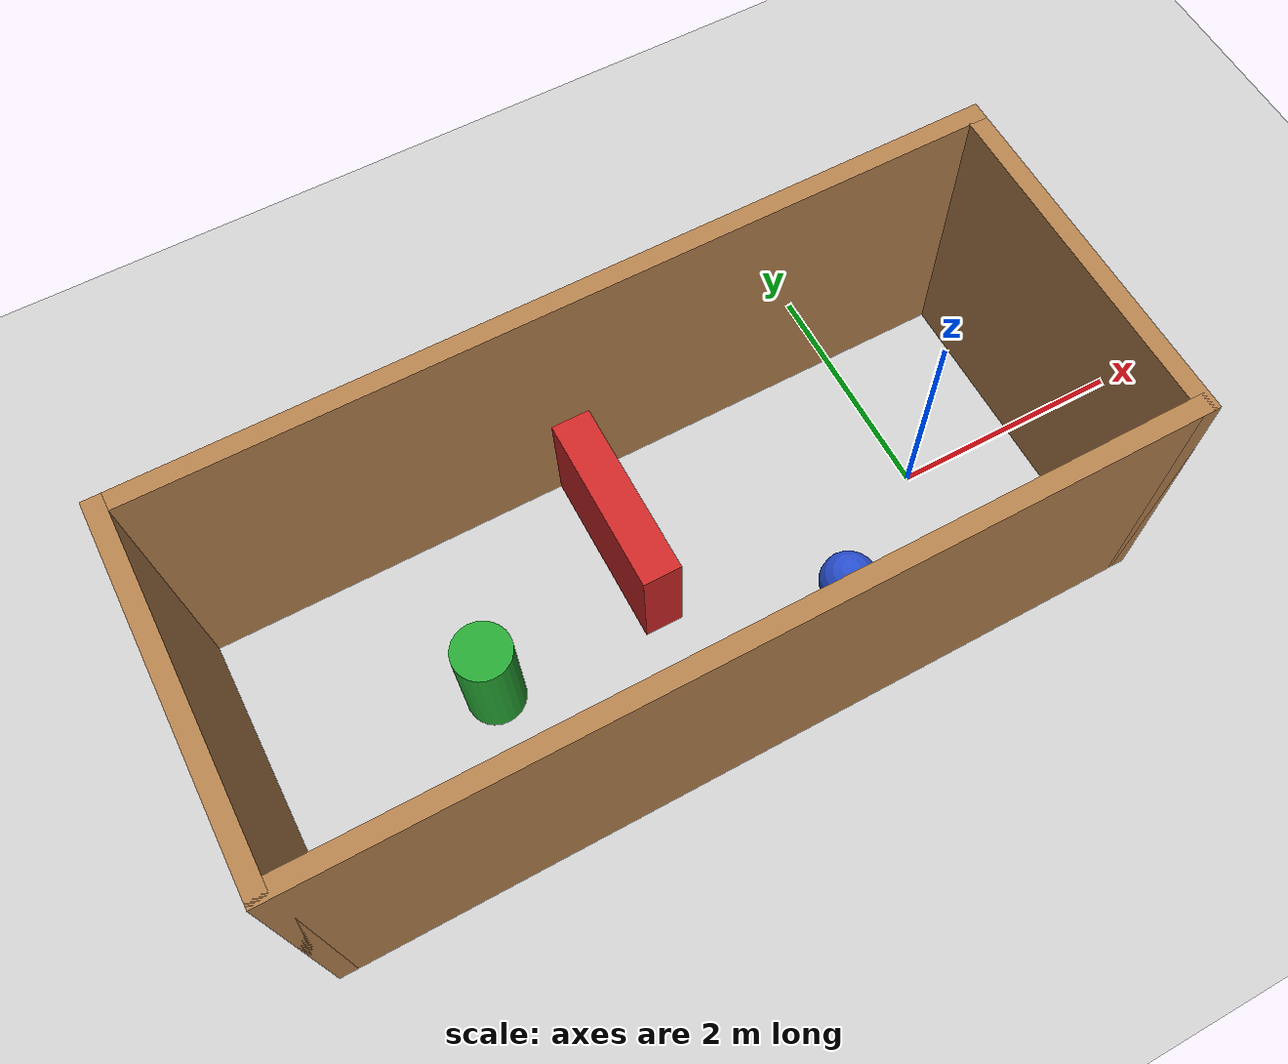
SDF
<sdf version="1.6">
 <world name="default">
  <light name="sun" type="directional">
   <pose>0 0 10 0 -0 0</pose>
   <diffuse>0.8 0.8 0.8 1</diffuse>
   <specular>0.2 0.2 0.2 1</specular>
   <attenuation>
    <range>1000</range>
    <constant>0.9</constant>
    <linear>0.01</linear>
    <quadratic>0.001</quadratic>
   </attenuation>
   <direction>-0.5 0.1 -0.9</direction>
  </light>
  <model name="ground_plane">
   <static>1</static>
   <link name="link">
    <collision name="collision">
     <geometry><plane><normal>0 0 1</normal><size>100 100</size></plane></geometry>
     <surface>
      <contact><collide_bitmask>65535</collide_bitmask></contact>
      <friction><ode><mu>100</mu><mu2>50</mu2></ode></friction>
     </surface>
    </collision>
    <visual name="visual">
     <cast_shadows>0</cast_shadows>
     <geometry><plane><normal>0 0 1</normal><size>100 100</size></plane></geometry>
     <material>
      <script><uri>file://media/materials/scripts/gazebo.material</uri><name>Gazebo/Grey</name></script>
     </material>
    </visual>
   </link>
  </model>
  <gravity>0 0 -9.8</gravity>
  <magnetic_field>6e-06 2.3e-05 -4.2e-05</magnetic_field>
  <atmosphere type="adiabatic"/>
  <physics name="default_physics" default="0" type="ode">
   <max_step_size>0.001</max_step_size>
   <real_time_factor>1</real_time_factor>
   <real_time_update_rate>1000</real_time_update_rate>
  </physics>
  <scene><ambient>0.4 0.4 0.4 1</ambient><background>0.7 0.7 0.7 1</background><shadows>1</shadows></scene>
  <audio><device>default</device></audio>
  <spherical_coordinates>
   <surface_model>EARTH_WGS84</surface_model>
   <latitude_deg>0</latitude_deg>
   <longitude_deg>0</longitude_deg>
   <elevation>0</elevation>
   <heading_deg>0</heading_deg>
  </spherical_coordinates>
  <model name="walls_stage1">
   <pose>-2.34799 0 0 0 -0 0</pose>
   <link name="Wall_0">
    <collision name="Wall_0_Collision">
     <geometry><box><size>7 0.15 2.5</size></box></geometry>
     <pose>0 0 1.25 0 -0 0</pose>
    </collision>
    <visual name="Wall_0_Visual">
     <pose>0 0 1.25 0 -0 0</pose>
     <geometry><box><size>7 0.15 2.5</size></box></geometry>
     <material>
      <script><uri>file://media/materials/scripts/gazebo.material</uri><name>Gazebo/Wood</name></script>
      <ambient>1 1 1 1</ambient>
     </material>
     <meta><layer>0</layer></meta>
    </visual>
    <pose>0 1.425 0 0 -0 3.14159</pose>
   </link>
   <link name="Wall_1">
    <collision name="Wall_1_Collision">
     <geometry><box><size>3 0.15 2.5</size></box></geometry>
     <pose>0 0 1.25 0 -0 0</pose>
    </collision>
    <visual name="Wall_1_Visual">
     <pose>0 0 1.25 0 -0 0</pose>
     <geometry><box><size>3 0.15 2.5</size></box></geometry>
     <material>
      <script><uri>file://media/materials/scripts/gazebo.material</uri><name>Gazebo/Wood</name></script>
      <ambient>1 1 1 1</ambient>
     </material>
     <meta><layer>0</layer></meta>
    </visual>
    <pose>-3.425 0 0 0 -0 -1.5708</pose>
   </link>
   <link name="Wall_2">
    <collision name="Wall_2_Collision">
     <geometry><box><size>7 0.15 2.5</size></box></geometry>
     <pose>0 0 1.25 0 -0 0</pose>
    </collision>
    <visual name="Wall_2_Visual">
     <pose>0 0 1.25 0 -0 0</pose>
     <geometry><box><size>7 0.15 2.5</size></box></geometry>
     <material>
      <script><uri>file://media/materials/scripts/gazebo.material</uri><name>Gazebo/Wood</name></script>
      <ambient>1 1 1 1</ambient>
     </material>
     <meta><layer>0</layer></meta>
    </visual>
    <pose>0 -1.425 0 0 -0 0</pose>
   </link>
   <link name="Wall_3">
    <collision name="Wall_3_Collision">
     <geometry><box><size>3 0.15 2.5</size></box></geometry>
     <pose>0 0 1.25 0 -0 0</pose>
    </collision>
    <visual name="Wall_3_Visual">
     <pose>0 0 1.25 0 -0 0</pose>
     <geometry><box><size>3 0.15 2.5</size></box></geometry>
     <material>
      <script><uri>file://media/materials/scripts/gazebo.material</uri><name>Gazebo/Wood</name></script>
      <ambient>1 1 1 1</ambient>
     </material>
     <meta><layer>0</layer></meta>
    </visual>
    <pose>3.425 0 0 0 -0 1.5708</pose>
   </link>
   <static>1</static>
  </model>
  <model name="unit_sphere">
   <pose>-1.01153 -0.648567 0.243766 0 -0 0</pose>
   <link name="link">
    <inertial>
     <mass>1</mass>
     <inertia><ixx>0.1</ixx><ixy>0</ixy><ixz>0</ixz><iyy>0.1</iyy><iyz>0</iyz><izz>0.1</izz></inertia>
    </inertial>
    <collision name="collision"><geometry><sphere><radius>0.243766</radius></sphere></geometry></collision>
    <visual name="visual">
     <geometry><sphere><radius>0.243766</radius></sphere></geometry>
     <material>
      <script><name>Gazebo/Blue</name><uri>file://media/materials/scripts/gazebo.material</uri></script>
     </material>
    </visual>
   </link>
  </model>
  <model name="unit_box">
   <pose>-2.45504 0.576878 0.5 0 -0 0</pose>
   <link name="link">
    <inertial>
     <mass>1</mass>
     <inertia>
      <ixx>0.166667</ixx>
      <ixy>0</ixy>
      <ixz>0</ixz>
      <iyy>0.166667</iyy>
      <iyz>0</iyz>
      <izz>0.166667</izz>
     </inertia>
    </inertial>
    <collision name="collision"><geometry><box><size>0.328113 1.54898 1</size></box></geometry></collision>
    <visual name="visual">
     <geometry><box><size>0.328113 1.54898 1</size></box></geometry>
     <material>
      <script><name>Gazebo/Red</name><uri>file://media/materials/scripts/gazebo.material</uri></script>
     </material>
    </visual>
   </link>
  </model>
  <model name="unit_cylinder">
   <pose>-3.90581 -0.087122 0.5 0 -0 0</pose>
   <link name="link">
    <inertial>
     <mass>1</mass>
     <inertia><ixx>0.145833</ixx><ixy>0</ixy><ixz>0</ixz><iyy>0.145833</iyy><iyz>0</iyz><izz>0.125</izz></inertia>
    </inertial>
    <collision name="collision">
     <geometry><cylinder><radius>0.240344</radius><length>1</length></cylinder></geometry>
    </collision>
    <visual name="visual">
     <geometry><cylinder><radius>0.240344</radius><length>1</length></cylinder></geometry>
     <material>
      <script><name>Gazebo/Green</name><uri>file://media/materials/scripts/gazebo.material</uri></script>
     </material>
    </visual>
   </link>
  </model>
 </world>
</sdf>
